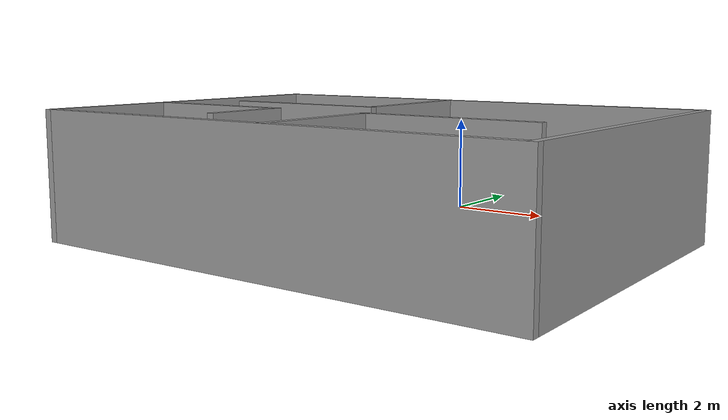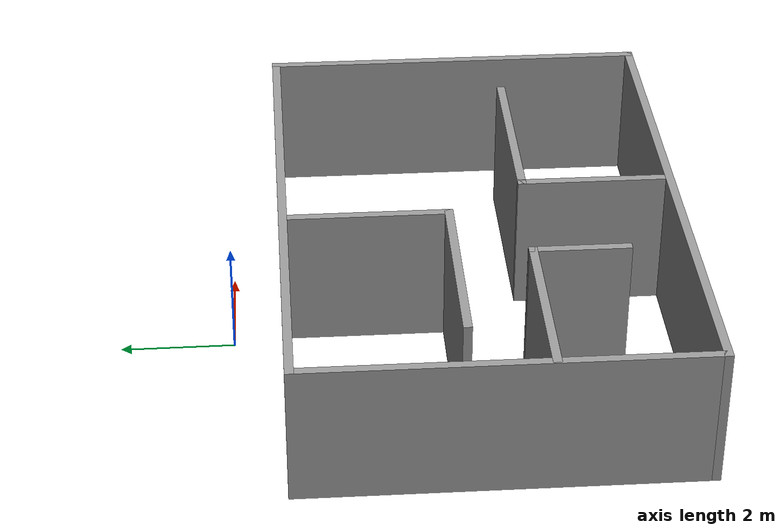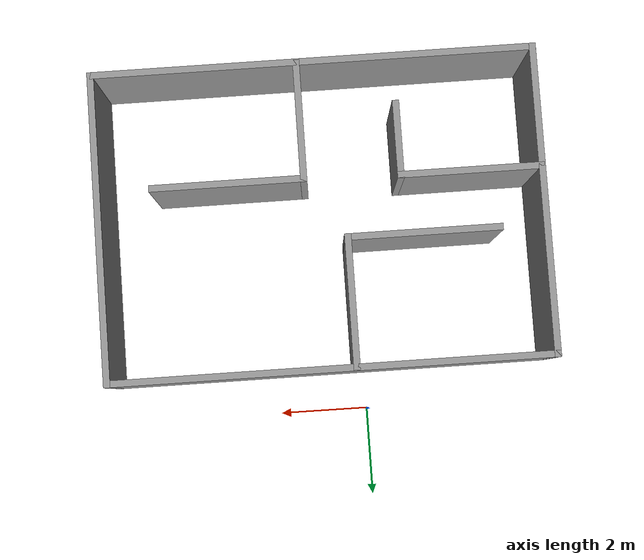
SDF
<?xml version='1.0'?>
<sdf version='1.7'>
  <model name='room'>
    <pose>0.765 -3.9175 0 0 -0 0</pose>
    <link name='Wall_0'>
      <collision name='Wall_0_Collision'>
        <geometry>
          <box>
            <size>10 0.15 2.5</size>
          </box>
        </geometry>
        <pose>0 0 1.25 0 -0 0</pose>
      </collision>
      <visual name='Wall_0_Visual'>
        <pose>0 0 1.25 0 -0 0</pose>
        <geometry>
          <box>
            <size>10 0.15 2.5</size>
          </box>
        </geometry>
        <material>
          <script>
            <uri>file://media/materials/scripts/gazebo.material</uri>
            <name>Gazebo/Grey</name>
          </script>
          <ambient>1 1 1 1</ambient>
        </material>
        <meta>
          <layer>0</layer>
        </meta>
      </visual>
      <pose>-0 3.0075 0 0 -0 0</pose>
    </link>
    <link name='Wall_1'>
      <collision name='Wall_1_Collision'>
        <geometry>
          <box>
            <size>7 0.15 2.5</size>
          </box>
        </geometry>
        <pose>0 0 1.25 0 -0 0</pose>
      </collision>
      <visual name='Wall_1_Visual'>
        <pose>0 0 1.25 0 -0 0</pose>
        <geometry>
          <box>
            <size>7 0.15 2.5</size>
          </box>
        </geometry>
        <material>
          <script>
            <uri>file://media/materials/scripts/gazebo.material</uri>
            <name>Gazebo/Grey</name>
          </script>
          <ambient>1 1 1 1</ambient>
        </material>
        <meta>
          <layer>0</layer>
        </meta>
      </visual>
      <pose>4.925 -0.4175 0 0 -0 -1.5708</pose>
    </link>
    <link name='Wall_10'>
      <collision name='Wall_10_Collision'>
        <geometry>
          <box>
            <size>1.75 0.15 2.5</size>
          </box>
        </geometry>
        <pose>0 0 1.25 0 -0 0</pose>
      </collision>
      <visual name='Wall_10_Visual'>
        <pose>0 0 1.25 0 -0 0</pose>
        <geometry>
          <box>
            <size>1.75 0.15 2.5</size>
          </box>
        </geometry>
        <material>
          <script>
            <uri>file://media/materials/scripts/gazebo.material</uri>
            <name>Gazebo/Grey</name>
          </script>
          <ambient>1 1 1 1</ambient>
        </material>
        <meta>
          <layer>0</layer>
        </meta>
      </visual>
      <pose>-1.79975 -1.95899 0 0 -0 -1.5708</pose>
    </link>
    <link name='Wall_12'>
      <collision name='Wall_12_Collision'>
        <geometry>
          <box>
            <size>2.75 0.15 2.5</size>
          </box>
        </geometry>
        <pose>0 0 1.25 0 -0 0</pose>
      </collision>
      <visual name='Wall_12_Visual'>
        <pose>0 0 1.25 0 -0 0</pose>
        <geometry>
          <box>
            <size>2.75 0.15 2.5</size>
          </box>
        </geometry>
        <material>
          <script>
            <uri>file://media/materials/scripts/gazebo.material</uri>
            <name>Gazebo/Grey</name>
          </script>
          <ambient>1 1 1 1</ambient>
        </material>
        <meta>
          <layer>0</layer>
        </meta>
      </visual>
      <pose>0.347267 -2.52052 0 0 -0 1.5708</pose>
    </link>
    <link name='Wall_13'>
      <collision name='Wall_13_Collision'>
        <geometry>
          <box>
            <size>0.15 0.15 2.5</size>
          </box>
        </geometry>
        <pose>0 0 1.25 0 -0 0</pose>
      </collision>
      <visual name='Wall_13_Visual'>
        <pose>0 0 1.25 0 -0 0</pose>
        <geometry>
          <box>
            <size>0.15 0.15 2.5</size>
          </box>
        </geometry>
        <material>
          <script>
            <uri>file://media/materials/scripts/gazebo.material</uri>
            <name>Gazebo/Grey</name>
          </script>
          <ambient>1 1 1 1</ambient>
        </material>
        <meta>
          <layer>0</layer>
        </meta>
      </visual>
      <pose>0.347267 -1.22052 0 0 -0 0</pose>
    </link>
    <link name='Wall_14'>
      <collision name='Wall_14_Collision'>
        <geometry>
          <box>
            <size>3.5 0.15 2.5</size>
          </box>
        </geometry>
        <pose>0 0 1.25 0 -0 0</pose>
      </collision>
      <visual name='Wall_14_Visual'>
        <pose>0 0 1.25 0 -0 0</pose>
        <geometry>
          <box>
            <size>3.5 0.15 2.5</size>
          </box>
        </geometry>
        <material>
          <script>
            <uri>file://media/materials/scripts/gazebo.material</uri>
            <name>Gazebo/Grey</name>
          </script>
          <ambient>1 1 1 1</ambient>
        </material>
        <meta>
          <layer>0</layer>
        </meta>
      </visual>
      <pose>2.02227 -1.22052 0 0 -0 0</pose>
    </link>
    <link name='Wall_2'>
      <collision name='Wall_2_Collision'>
        <geometry>
          <box>
            <size>10 0.15 2.5</size>
          </box>
        </geometry>
        <pose>0 0 1.25 0 -0 0</pose>
      </collision>
      <visual name='Wall_2_Visual'>
        <pose>0 0 1.25 0 -0 0</pose>
        <geometry>
          <box>
            <size>10 0.15 2.5</size>
          </box>
        </geometry>
        <material>
          <script>
            <uri>file://media/materials/scripts/gazebo.material</uri>
            <name>Gazebo/Grey</name>
          </script>
          <ambient>1 1 1 1</ambient>
        </material>
        <meta>
          <layer>0</layer>
        </meta>
      </visual>
      <pose>-0 -3.8425 0 0 -0 3.14159</pose>
    </link>
    <link name='Wall_3'>
      <collision name='Wall_3_Collision'>
        <geometry>
          <box>
            <size>7 0.15 2.5</size>
          </box>
        </geometry>
        <pose>0 0 1.25 0 -0 0</pose>
      </collision>
      <visual name='Wall_3_Visual'>
        <pose>0 0 1.25 0 -0 0</pose>
        <geometry>
          <box>
            <size>7 0.15 2.5</size>
          </box>
        </geometry>
        <material>
          <script>
            <uri>file://media/materials/scripts/gazebo.material</uri>
            <name>Gazebo/Grey</name>
          </script>
          <ambient>1 1 1 1</ambient>
        </material>
        <meta>
          <layer>0</layer>
        </meta>
      </visual>
      <pose>-4.925 -0.4175 0 0 -0 1.5708</pose>
    </link>
    <link name='Wall_6'>
      <collision name='Wall_6_Collision'>
        <geometry>
          <box>
            <size>3 0.15 2.5</size>
          </box>
        </geometry>
        <pose>0 0 1.25 0 -0 0</pose>
      </collision>
      <visual name='Wall_6_Visual'>
        <pose>0 0 1.25 0 -0 0</pose>
        <geometry>
          <box>
            <size>3 0.15 2.5</size>
          </box>
        </geometry>
        <material>
          <script>
            <uri>file://media/materials/scripts/gazebo.material</uri>
            <name>Gazebo/Grey</name>
          </script>
          <ambient>1 1 1 1</ambient>
        </material>
        <meta>
          <layer>0</layer>
        </meta>
      </visual>
      <pose>-0.53484 1.568 0 0 -0 -1.5708</pose>
    </link>
    <link name='Wall_7'>
      <collision name='Wall_7_Collision'>
        <geometry>
          <box>
            <size>3.5 0.15 2.5</size>
          </box>
        </geometry>
        <pose>0 0 1.25 0 -0 0</pose>
      </collision>
      <visual name='Wall_7_Visual'>
        <pose>0 0 1.25 0 -0 0</pose>
        <geometry>
          <box>
            <size>3.5 0.15 2.5</size>
          </box>
        </geometry>
        <material>
          <script>
            <uri>file://media/materials/scripts/gazebo.material</uri>
            <name>Gazebo/Grey</name>
          </script>
          <ambient>1 1 1 1</ambient>
        </material>
        <meta>
          <layer>0</layer>
        </meta>
      </visual>
      <pose>-2.20984 0.143003 0 0 -0 3.14159</pose>
    </link>
    <link name='Wall_9'>
      <collision name='Wall_9_Collision'>
        <geometry>
          <box>
            <size>3.25 0.15 2.5</size>
          </box>
        </geometry>
        <pose>0 0 1.25 0 -0 0</pose>
      </collision>
      <visual name='Wall_9_Visual'>
        <pose>0 0 1.25 0 -0 0</pose>
        <geometry>
          <box>
            <size>3.25 0.15 2.5</size>
          </box>
        </geometry>
        <material>
          <script>
            <uri>file://media/materials/scripts/gazebo.material</uri>
            <name>Gazebo/Grey</name>
          </script>
          <ambient>1 1 1 1</ambient>
        </material>
        <meta>
          <layer>0</layer>
        </meta>
      </visual>
      <pose>-3.34975 -1.15899 0 0 -0 0</pose>
    </link>
    <static>1</static>
  </model>
</sdf>
